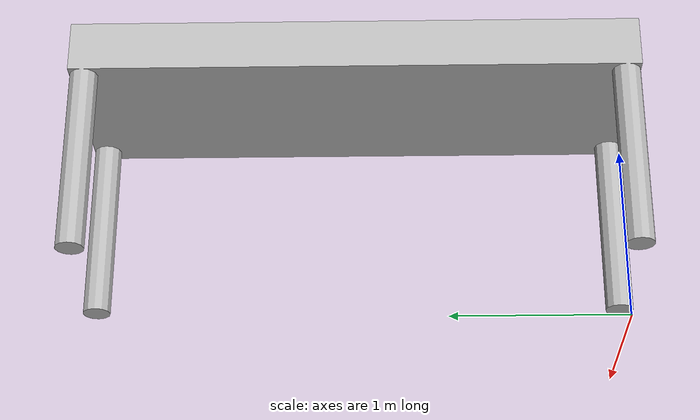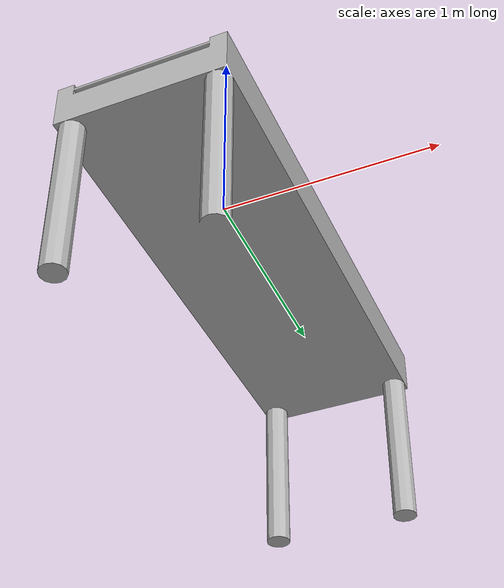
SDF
<?xml version='1.0'?>
<sdf version="1.4">
<model name="line">
  <pose>0 0 0 0 0 0</pose>
    <link name="link">
      <inertial>
        <pose>-0.5 1.5 0.058 0 0 0</pose>
        <inertia>
          <ixx>107465143958</ixx>
          <ixy>0</ixy>
          <ixz>-7337455</ixz>
          <iyy>686955562688</iyy>
          <iyz>0</iyz>
          <izz>2602865691630</izz>
        </inertia>
        <mass>750.307</mass>
      </inertial>
      <collision name="collision">
        <pose>0 0 1 0 0 1.57</pose>
        <geometry>
          <mesh>
            <uri>model://line/line_demo.STL</uri>
          </mesh>
        </geometry>
      </collision>
      <visual name="visual">
        <pose>0 0 1 0 0 1.57</pose>
        <geometry>
          <mesh>
            <uri>model://line/line_demo.STL</uri>
          </mesh>
        </geometry>
      </visual>
    </link>
  </model>
</sdf>
